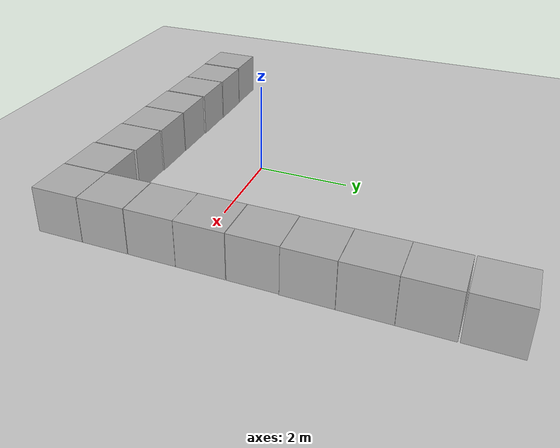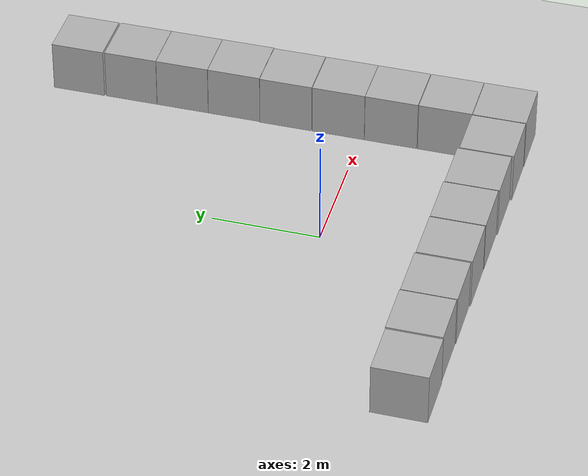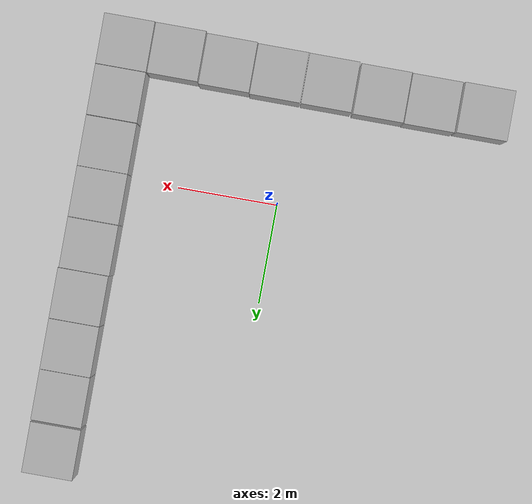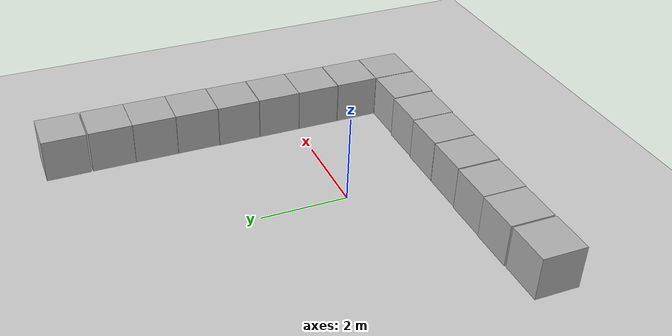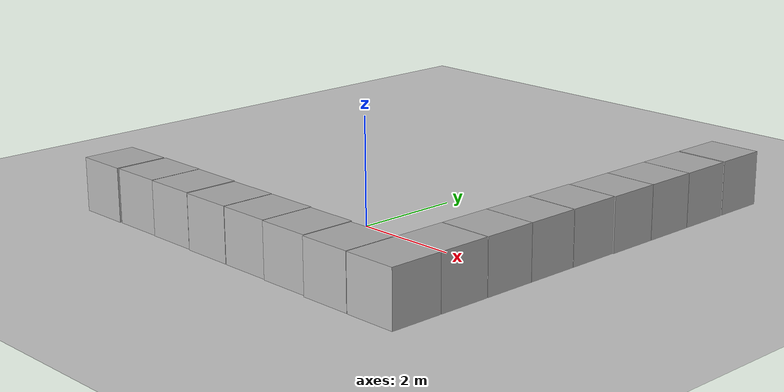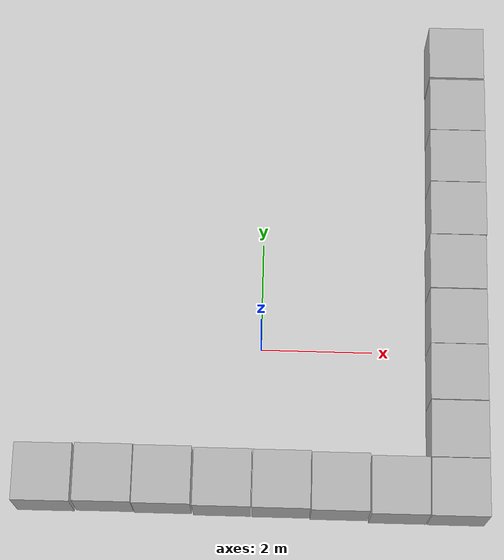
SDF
<sdf version='1.10'>
  <world name='empty'>
    <physics name='1ms' type='ode'>
      <max_step_size>0.001</max_step_size>
      <real_time_factor>1</real_time_factor>
      <real_time_update_rate>1000</real_time_update_rate>
      <solver>
        <type>quick</type>
        <iters>10</iters>
        <sor>1.3</sor>
      </solver>
    </physics>
    <plugin name='gz::sim::systems::Physics' filename='gz-sim-physics-system'/>
    <plugin name='gz::sim::systems::UserCommands' filename='gz-sim-user-commands-system'/>
    <plugin name='gz::sim::systems::SceneBroadcaster' filename='gz-sim-scene-broadcaster-system'/>
    <plugin name='gz::sim::systems::Sensors' filename='gz-sim-sensors-system'>
      <render_engine>ogre2</render_engine>
    </plugin>
    <plugin name='gz::sim::systems::Contact' filename='gz-sim-contact-system'/>
    <gravity>0 0 -9.8000000000000007</gravity>
    <magnetic_field>5.5644999999999998e-06 2.2875799999999999e-05 -4.2388400000000002e-05</magnetic_field>
    <atmosphere type='adiabatic'/>
    <scene>
      <ambient>0.400000006 0.400000006 0.400000006 1</ambient>
      <background>0.699999988 0.699999988 0.699999988 1</background>
      <shadows>true</shadows>
    </scene>
    <model name='ground_plane'>
      <static>true</static>
      <link name='link'>
        <collision name='collision'>
          <geometry>
            <plane>
              <normal>0 0 1</normal>
              <size>100 100</size>
            </plane>
          </geometry>
          <surface>
            <friction>
              <ode>
                <mu>1</mu>
                <mu2>1</mu2>
              </ode>
            </friction>
            <bounce/>
            <contact/>
          </surface>
        </collision>
        <visual name='visual'>
          <geometry>
            <plane>
              <normal>0 0 1</normal>
              <size>100 100</size>
            </plane>
          </geometry>
          <material>
            <ambient>0.800000012 0.800000012 0.800000012 1</ambient>
            <diffuse>0.800000012 0.800000012 0.800000012 1</diffuse>
            <specular>0.800000012 0.800000012 0.800000012 1</specular>
          </material>
        </visual>
        <pose>0 0 0 0 0 0</pose>
        <inertial>
          <pose>0 0 0 0 0 0</pose>
          <mass>1</mass>
          <inertia>
            <ixx>1</ixx>
            <ixy>0</ixy>
            <ixz>0</ixz>
            <iyy>1</iyy>
            <iyz>0</iyz>
            <izz>1</izz>
          </inertia>
        </inertial>
        <enable_wind>false</enable_wind>
      </link>
      <pose>0 0 0 0 0 0</pose>
      <self_collide>false</self_collide>
    </model>
    <model name='box'>
      <pose>3.4817743152163816 4.4747567476924832 0.49999999980497606 1.0048033485058014e-21 -2.4640853465547739e-21 -3.9210766489770922e-22</pose>
      <link name='box_link'>
        <inertial>
          <inertia>
            <ixx>0.16666</ixx>
            <ixy>0</ixy>
            <ixz>0</ixz>
            <iyy>0.16666</iyy>
            <iyz>0</iyz>
            <izz>0.16666</izz>
          </inertia>
          <mass>1</mass>
          <pose>0 0 0 0 0 0</pose>
        </inertial>
        <collision name='box_collision'>
          <geometry>
            <box>
              <size>1 1 1</size>
            </box>
          </geometry>
          <surface>
            <friction>
              <ode/>
            </friction>
            <bounce/>
            <contact/>
          </surface>
        </collision>
        <visual name='box_visual'>
          <geometry>
            <box>
              <size>1 1 1</size>
            </box>
          </geometry>
          <material>
            <ambient>0.300000012 0.300000012 0.300000012 1</ambient>
            <diffuse>0.699999988 0.699999988 0.699999988 1</diffuse>
            <specular>1 1 1 1</specular>
          </material>
        </visual>
        <pose>0 0 0 0 0 0</pose>
        <enable_wind>false</enable_wind>
      </link>
      <static>false</static>
      <self_collide>false</self_collide>
    </model>
    <model name='box_0'>
      <pose>3.4815694817664911 3.4705399048995349 0.49999999980497606 1.0048033485058014e-21 -2.4640853465547739e-21 -3.9210766489770922e-22</pose>
      <link name='box_link'>
        <inertial>
          <inertia>
            <ixx>0.16666</ixx>
            <ixy>0</ixy>
            <ixz>0</ixz>
            <iyy>0.16666</iyy>
            <iyz>0</iyz>
            <izz>0.16666</izz>
          </inertia>
          <mass>1</mass>
          <pose>0 0 0 0 0 0</pose>
        </inertial>
        <collision name='box_collision'>
          <geometry>
            <box>
              <size>1 1 1</size>
            </box>
          </geometry>
          <surface>
            <friction>
              <ode/>
            </friction>
            <bounce/>
            <contact/>
          </surface>
        </collision>
        <visual name='box_visual'>
          <geometry>
            <box>
              <size>1 1 1</size>
            </box>
          </geometry>
          <material>
            <ambient>0.300000012 0.300000012 0.300000012 1</ambient>
            <diffuse>0.699999988 0.699999988 0.699999988 1</diffuse>
            <specular>1 1 1 1</specular>
          </material>
        </visual>
        <pose>0 0 0 0 0 0</pose>
        <enable_wind>false</enable_wind>
      </link>
      <static>false</static>
      <self_collide>false</self_collide>
    </model>
    <model name='box_1'>
      <pose>3.4811221902421283 2.4647967293144002 0.49999999980497606 1.0048033485058014e-21 -2.4640853465547739e-21 -3.9210766489770922e-22</pose>
      <link name='box_link'>
        <inertial>
          <inertia>
            <ixx>0.16666</ixx>
            <ixy>0</ixy>
            <ixz>0</ixz>
            <iyy>0.16666</iyy>
            <iyz>0</iyz>
            <izz>0.16666</izz>
          </inertia>
          <mass>1</mass>
          <pose>0 0 0 0 0 0</pose>
        </inertial>
        <collision name='box_collision'>
          <geometry>
            <box>
              <size>1 1 1</size>
            </box>
          </geometry>
          <surface>
            <friction>
              <ode/>
            </friction>
            <bounce/>
            <contact/>
          </surface>
        </collision>
        <visual name='box_visual'>
          <geometry>
            <box>
              <size>1 1 1</size>
            </box>
          </geometry>
          <material>
            <ambient>0.300000012 0.300000012 0.300000012 1</ambient>
            <diffuse>0.699999988 0.699999988 0.699999988 1</diffuse>
            <specular>1 1 1 1</specular>
          </material>
        </visual>
        <pose>0 0 0 0 0 0</pose>
        <enable_wind>false</enable_wind>
      </link>
      <static>false</static>
      <self_collide>false</self_collide>
    </model>
    <model name='box_2'>
      <pose>3.4649369410271946 1.4583215101845066 0.49999999980497606 1.0048033485058014e-21 -2.4640853465547739e-21 -3.9210766489770922e-22</pose>
      <link name='box_link'>
        <inertial>
          <inertia>
            <ixx>0.16666</ixx>
            <ixy>0</ixy>
            <ixz>0</ixz>
            <iyy>0.16666</iyy>
            <iyz>0</iyz>
            <izz>0.16666</izz>
          </inertia>
          <mass>1</mass>
          <pose>0 0 0 0 0 0</pose>
        </inertial>
        <collision name='box_collision'>
          <geometry>
            <box>
              <size>1 1 1</size>
            </box>
          </geometry>
          <surface>
            <friction>
              <ode/>
            </friction>
            <bounce/>
            <contact/>
          </surface>
        </collision>
        <visual name='box_visual'>
          <geometry>
            <box>
              <size>1 1 1</size>
            </box>
          </geometry>
          <material>
            <ambient>0.300000012 0.300000012 0.300000012 1</ambient>
            <diffuse>0.699999988 0.699999988 0.699999988 1</diffuse>
            <specular>1 1 1 1</specular>
          </material>
        </visual>
        <pose>0 0 0 0 0 0</pose>
        <enable_wind>false</enable_wind>
      </link>
      <static>false</static>
      <self_collide>false</self_collide>
    </model>
    <model name='box_3'>
      <pose>3.4637316163455312 0.4463204931580898 0.49999999990199806 6.0340761336322896e-22 9.0386193497931382e-22 -1.7912779165349038e-22</pose>
      <link name='box_link'>
        <inertial>
          <inertia>
            <ixx>0.16666</ixx>
            <ixy>0</ixy>
            <ixz>0</ixz>
            <iyy>0.16666</iyy>
            <iyz>0</iyz>
            <izz>0.16666</izz>
          </inertia>
          <mass>1</mass>
          <pose>0 0 0 0 0 0</pose>
        </inertial>
        <collision name='box_collision'>
          <geometry>
            <box>
              <size>1 1 1</size>
            </box>
          </geometry>
          <surface>
            <friction>
              <ode/>
            </friction>
            <bounce/>
            <contact/>
          </surface>
        </collision>
        <visual name='box_visual'>
          <geometry>
            <box>
              <size>1 1 1</size>
            </box>
          </geometry>
          <material>
            <ambient>0.300000012 0.300000012 0.300000012 1</ambient>
            <diffuse>0.699999988 0.699999988 0.699999988 1</diffuse>
            <specular>1 1 1 1</specular>
          </material>
        </visual>
        <pose>0 0 0 0 0 0</pose>
        <enable_wind>false</enable_wind>
      </link>
      <static>false</static>
      <self_collide>false</self_collide>
    </model>
    <model name='box_4'>
      <pose>3.4630785481289701 -0.55782624238074652 0.49999999990199806 6.2287739151293738e-22 9.3279666454713669e-22 -3.6315533669320137e-22</pose>
      <link name='box_link'>
        <inertial>
          <inertia>
            <ixx>0.16666</ixx>
            <ixy>0</ixy>
            <ixz>0</ixz>
            <iyy>0.16666</iyy>
            <iyz>0</iyz>
            <izz>0.16666</izz>
          </inertia>
          <mass>1</mass>
          <pose>0 0 0 0 0 0</pose>
        </inertial>
        <collision name='box_collision'>
          <geometry>
            <box>
              <size>1 1 1</size>
            </box>
          </geometry>
          <surface>
            <friction>
              <ode/>
            </friction>
            <bounce/>
            <contact/>
          </surface>
        </collision>
        <visual name='box_visual'>
          <geometry>
            <box>
              <size>1 1 1</size>
            </box>
          </geometry>
          <material>
            <ambient>0.300000012 0.300000012 0.300000012 1</ambient>
            <diffuse>0.699999988 0.699999988 0.699999988 1</diffuse>
            <specular>1 1 1 1</specular>
          </material>
        </visual>
        <pose>0 0 0 0 0 0</pose>
        <enable_wind>false</enable_wind>
      </link>
      <static>false</static>
      <self_collide>false</self_collide>
    </model>
    <model name='box_5'>
      <pose>3.4624552587399293 -1.5692770497736375 0.49999999990199806 1.7084716059672498e-21 1.7859134985792927e-21 -2.0193124312478175e-22</pose>
      <link name='box_link'>
        <inertial>
          <inertia>
            <ixx>0.16666</ixx>
            <ixy>0</ixy>
            <ixz>0</ixz>
            <iyy>0.16666</iyy>
            <iyz>0</iyz>
            <izz>0.16666</izz>
          </inertia>
          <mass>1</mass>
          <pose>0 0 0 0 0 0</pose>
        </inertial>
        <collision name='box_collision'>
          <geometry>
            <box>
              <size>1 1 1</size>
            </box>
          </geometry>
          <surface>
            <friction>
              <ode/>
            </friction>
            <bounce/>
            <contact/>
          </surface>
        </collision>
        <visual name='box_visual'>
          <geometry>
            <box>
              <size>1 1 1</size>
            </box>
          </geometry>
          <material>
            <ambient>0.300000012 0.300000012 0.300000012 1</ambient>
            <diffuse>0.699999988 0.699999988 0.699999988 1</diffuse>
            <specular>1 1 1 1</specular>
          </material>
        </visual>
        <pose>0 0 0 0 0 0</pose>
        <enable_wind>false</enable_wind>
      </link>
      <static>false</static>
      <self_collide>false</self_collide>
    </model>
    <model name='box_6'>
      <pose>3.4626923634330553 -2.5765292831648439 0.49999999990199806 6.2287739151293738e-22 9.3279666454713669e-22 -3.6315533669320137e-22</pose>
      <link name='box_link'>
        <inertial>
          <inertia>
            <ixx>0.16666</ixx>
            <ixy>0</ixy>
            <ixz>0</ixz>
            <iyy>0.16666</iyy>
            <iyz>0</iyz>
            <izz>0.16666</izz>
          </inertia>
          <mass>1</mass>
          <pose>0 0 0 0 0 0</pose>
        </inertial>
        <collision name='box_collision'>
          <geometry>
            <box>
              <size>1 1 1</size>
            </box>
          </geometry>
          <surface>
            <friction>
              <ode/>
            </friction>
            <bounce/>
            <contact/>
          </surface>
        </collision>
        <visual name='box_visual'>
          <geometry>
            <box>
              <size>1 1 1</size>
            </box>
          </geometry>
          <material>
            <ambient>0.300000012 0.300000012 0.300000012 1</ambient>
            <diffuse>0.699999988 0.699999988 0.699999988 1</diffuse>
            <specular>1 1 1 1</specular>
          </material>
        </visual>
        <pose>0 0 0 0 0 0</pose>
        <enable_wind>false</enable_wind>
      </link>
      <static>false</static>
      <self_collide>false</self_collide>
    </model>
    <model name='box_7'>
      <pose>2.4463764789220788 -2.5699721769652402 0.49999999990199806 6.2287739151293738e-22 9.3279666454713669e-22 -3.6315533669320137e-22</pose>
      <link name='box_link'>
        <inertial>
          <inertia>
            <ixx>0.16666</ixx>
            <ixy>0</ixy>
            <ixz>0</ixz>
            <iyy>0.16666</iyy>
            <iyz>0</iyz>
            <izz>0.16666</izz>
          </inertia>
          <mass>1</mass>
          <pose>0 0 0 0 0 0</pose>
        </inertial>
        <collision name='box_collision'>
          <geometry>
            <box>
              <size>1 1 1</size>
            </box>
          </geometry>
          <surface>
            <friction>
              <ode/>
            </friction>
            <bounce/>
            <contact/>
          </surface>
        </collision>
        <visual name='box_visual'>
          <geometry>
            <box>
              <size>1 1 1</size>
            </box>
          </geometry>
          <material>
            <ambient>0.300000012 0.300000012 0.300000012 1</ambient>
            <diffuse>0.699999988 0.699999988 0.699999988 1</diffuse>
            <specular>1 1 1 1</specular>
          </material>
        </visual>
        <pose>0 0 0 0 0 0</pose>
        <enable_wind>false</enable_wind>
      </link>
      <static>false</static>
      <self_collide>false</self_collide>
    </model>
    <model name='box_8'>
      <pose>1.4224137610452137 -2.5340144220715626 0.49999999990199806 6.2287739151293738e-22 9.3279666454713669e-22 -3.6315533669320137e-22</pose>
      <link name='box_link'>
        <inertial>
          <inertia>
            <ixx>0.16666</ixx>
            <ixy>0</ixy>
            <ixz>0</ixz>
            <iyy>0.16666</iyy>
            <iyz>0</iyz>
            <izz>0.16666</izz>
          </inertia>
          <mass>1</mass>
          <pose>0 0 0 0 0 0</pose>
        </inertial>
        <collision name='box_collision'>
          <geometry>
            <box>
              <size>1 1 1</size>
            </box>
          </geometry>
          <surface>
            <friction>
              <ode/>
            </friction>
            <bounce/>
            <contact/>
          </surface>
        </collision>
        <visual name='box_visual'>
          <geometry>
            <box>
              <size>1 1 1</size>
            </box>
          </geometry>
          <material>
            <ambient>0.300000012 0.300000012 0.300000012 1</ambient>
            <diffuse>0.699999988 0.699999988 0.699999988 1</diffuse>
            <specular>1 1 1 1</specular>
          </material>
        </visual>
        <pose>0 0 0 0 0 0</pose>
        <enable_wind>false</enable_wind>
      </link>
      <static>false</static>
      <self_collide>false</self_collide>
    </model>
    <model name='box_9'>
      <pose>0.4076391799576109 -2.5137031391128426 0.49999999990199806 6.2287739151293738e-22 9.3279666454713669e-22 -3.6315533669320137e-22</pose>
      <link name='box_link'>
        <inertial>
          <inertia>
            <ixx>0.16666</ixx>
            <ixy>0</ixy>
            <ixz>0</ixz>
            <iyy>0.16666</iyy>
            <iyz>0</iyz>
            <izz>0.16666</izz>
          </inertia>
          <mass>1</mass>
          <pose>0 0 0 0 0 0</pose>
        </inertial>
        <collision name='box_collision'>
          <geometry>
            <box>
              <size>1 1 1</size>
            </box>
          </geometry>
          <surface>
            <friction>
              <ode/>
            </friction>
            <bounce/>
            <contact/>
          </surface>
        </collision>
        <visual name='box_visual'>
          <geometry>
            <box>
              <size>1 1 1</size>
            </box>
          </geometry>
          <material>
            <ambient>0.300000012 0.300000012 0.300000012 1</ambient>
            <diffuse>0.699999988 0.699999988 0.699999988 1</diffuse>
            <specular>1 1 1 1</specular>
          </material>
        </visual>
        <pose>0 0 0 0 0 0</pose>
        <enable_wind>false</enable_wind>
      </link>
      <static>false</static>
      <self_collide>false</self_collide>
    </model>
    <model name='box_10'>
      <pose>-0.61065955198844901 -2.5079871832785976 0.49999999990199806 6.2287739151293738e-22 9.3279666454713669e-22 -3.6315533669320137e-22</pose>
      <link name='box_link'>
        <inertial>
          <inertia>
            <ixx>0.16666</ixx>
            <ixy>0</ixy>
            <ixz>0</ixz>
            <iyy>0.16666</iyy>
            <iyz>0</iyz>
            <izz>0.16666</izz>
          </inertia>
          <mass>1</mass>
          <pose>0 0 0 0 0 0</pose>
        </inertial>
        <collision name='box_collision'>
          <geometry>
            <box>
              <size>1 1 1</size>
            </box>
          </geometry>
          <surface>
            <friction>
              <ode/>
            </friction>
            <bounce/>
            <contact/>
          </surface>
        </collision>
        <visual name='box_visual'>
          <geometry>
            <box>
              <size>1 1 1</size>
            </box>
          </geometry>
          <material>
            <ambient>0.300000012 0.300000012 0.300000012 1</ambient>
            <diffuse>0.699999988 0.699999988 0.699999988 1</diffuse>
            <specular>1 1 1 1</specular>
          </material>
        </visual>
        <pose>0 0 0 0 0 0</pose>
        <enable_wind>false</enable_wind>
      </link>
      <static>false</static>
      <self_collide>false</self_collide>
    </model>
    <model name='box_11'>
      <pose>-1.6434519344598439 -2.4869916724191086 0.49999999990199806 6.2287739151293738e-22 9.3279666454713669e-22 -3.6315533669320137e-22</pose>
      <link name='box_link'>
        <inertial>
          <inertia>
            <ixx>0.16666</ixx>
            <ixy>0</ixy>
            <ixz>0</ixz>
            <iyy>0.16666</iyy>
            <iyz>0</iyz>
            <izz>0.16666</izz>
          </inertia>
          <mass>1</mass>
          <pose>0 0 0 0 0 0</pose>
        </inertial>
        <collision name='box_collision'>
          <geometry>
            <box>
              <size>1 1 1</size>
            </box>
          </geometry>
          <surface>
            <friction>
              <ode/>
            </friction>
            <bounce/>
            <contact/>
          </surface>
        </collision>
        <visual name='box_visual'>
          <geometry>
            <box>
              <size>1 1 1</size>
            </box>
          </geometry>
          <material>
            <ambient>0.300000012 0.300000012 0.300000012 1</ambient>
            <diffuse>0.699999988 0.699999988 0.699999988 1</diffuse>
            <specular>1 1 1 1</specular>
          </material>
        </visual>
        <pose>0 0 0 0 0 0</pose>
        <enable_wind>false</enable_wind>
      </link>
      <static>false</static>
      <self_collide>false</self_collide>
    </model>
    <model name='box_12'>
      <pose>-2.6575827444340847 -2.4755765643617833 0.49999999990199806 6.2287739151293738e-22 9.3279666454713669e-22 -3.6315533669320137e-22</pose>
      <link name='box_link'>
        <inertial>
          <inertia>
            <ixx>0.16666</ixx>
            <ixy>0</ixy>
            <ixz>0</ixz>
            <iyy>0.16666</iyy>
            <iyz>0</iyz>
            <izz>0.16666</izz>
          </inertia>
          <mass>1</mass>
          <pose>0 0 0 0 0 0</pose>
        </inertial>
        <collision name='box_collision'>
          <geometry>
            <box>
              <size>1 1 1</size>
            </box>
          </geometry>
          <surface>
            <friction>
              <ode/>
            </friction>
            <bounce/>
            <contact/>
          </surface>
        </collision>
        <visual name='box_visual'>
          <geometry>
            <box>
              <size>1 1 1</size>
            </box>
          </geometry>
          <material>
            <ambient>0.300000012 0.300000012 0.300000012 1</ambient>
            <diffuse>0.699999988 0.699999988 0.699999988 1</diffuse>
            <specular>1 1 1 1</specular>
          </material>
        </visual>
        <pose>0 0 0 0 0 0</pose>
        <enable_wind>false</enable_wind>
      </link>
      <static>false</static>
      <self_collide>false</self_collide>
    </model>
    <model name='box_13'>
      <pose>3.4775313324263131 5.5094620085736938 0.49999999990199806 6.2287739151293738e-22 9.3279666454713669e-22 -3.6315533669320137e-22</pose>
      <link name='box_link'>
        <inertial>
          <inertia>
            <ixx>0.16666</ixx>
            <ixy>0</ixy>
            <ixz>0</ixz>
            <iyy>0.16666</iyy>
            <iyz>0</iyz>
            <izz>0.16666</izz>
          </inertia>
          <mass>1</mass>
          <pose>0 0 0 0 0 0</pose>
        </inertial>
        <collision name='box_collision'>
          <geometry>
            <box>
              <size>1 1 1</size>
            </box>
          </geometry>
          <surface>
            <friction>
              <ode/>
            </friction>
            <bounce/>
            <contact/>
          </surface>
        </collision>
        <visual name='box_visual'>
          <geometry>
            <box>
              <size>1 1 1</size>
            </box>
          </geometry>
          <material>
            <ambient>0.300000012 0.300000012 0.300000012 1</ambient>
            <diffuse>0.699999988 0.699999988 0.699999988 1</diffuse>
            <specular>1 1 1 1</specular>
          </material>
        </visual>
        <pose>0 0 0 0 0 0</pose>
        <enable_wind>false</enable_wind>
      </link>
      <static>false</static>
      <self_collide>false</self_collide>
    </model>
    <model name='box_14'>
      <pose>-3.6940152374569415 -2.4875988526481074 0.49999999990199806 6.2287739151293738e-22 9.3279666454713669e-22 -3.6315533669320137e-22</pose>
      <link name='box_link'>
        <inertial>
          <inertia>
            <ixx>0.16666</ixx>
            <ixy>0</ixy>
            <ixz>0</ixz>
            <iyy>0.16666</iyy>
            <iyz>0</iyz>
            <izz>0.16666</izz>
          </inertia>
          <mass>1</mass>
          <pose>0 0 0 0 0 0</pose>
        </inertial>
        <collision name='box_collision'>
          <geometry>
            <box>
              <size>1 1 1</size>
            </box>
          </geometry>
          <surface>
            <friction>
              <ode/>
            </friction>
            <bounce/>
            <contact/>
          </surface>
        </collision>
        <visual name='box_visual'>
          <geometry>
            <box>
              <size>1 1 1</size>
            </box>
          </geometry>
          <material>
            <ambient>0.300000012 0.300000012 0.300000012 1</ambient>
            <diffuse>0.699999988 0.699999988 0.699999988 1</diffuse>
            <specular>1 1 1 1</specular>
          </material>
        </visual>
        <pose>0 0 0 0 0 0</pose>
        <enable_wind>false</enable_wind>
      </link>
      <static>false</static>
      <self_collide>false</self_collide>
    </model>
    <light name='sun' type='directional'>
      <pose>0 0 10 0 0 0</pose>
      <cast_shadows>true</cast_shadows>
      <intensity>1</intensity>
      <direction>-0.5 0.10000000000000001 -0.90000000000000002</direction>
      <diffuse>0.800000012 0.800000012 0.800000012 1</diffuse>
      <specular>0.200000003 0.200000003 0.200000003 1</specular>
      <attenuation>
        <range>1000</range>
        <linear>0.01</linear>
        <constant>0.90000000000000002</constant>
        <quadratic>0.001</quadratic>
      </attenuation>
      <spot>
        <inner_angle>0</inner_angle>
        <outer_angle>0</outer_angle>
        <falloff>0</falloff>
      </spot>
    </light>
  </world>
</sdf>
